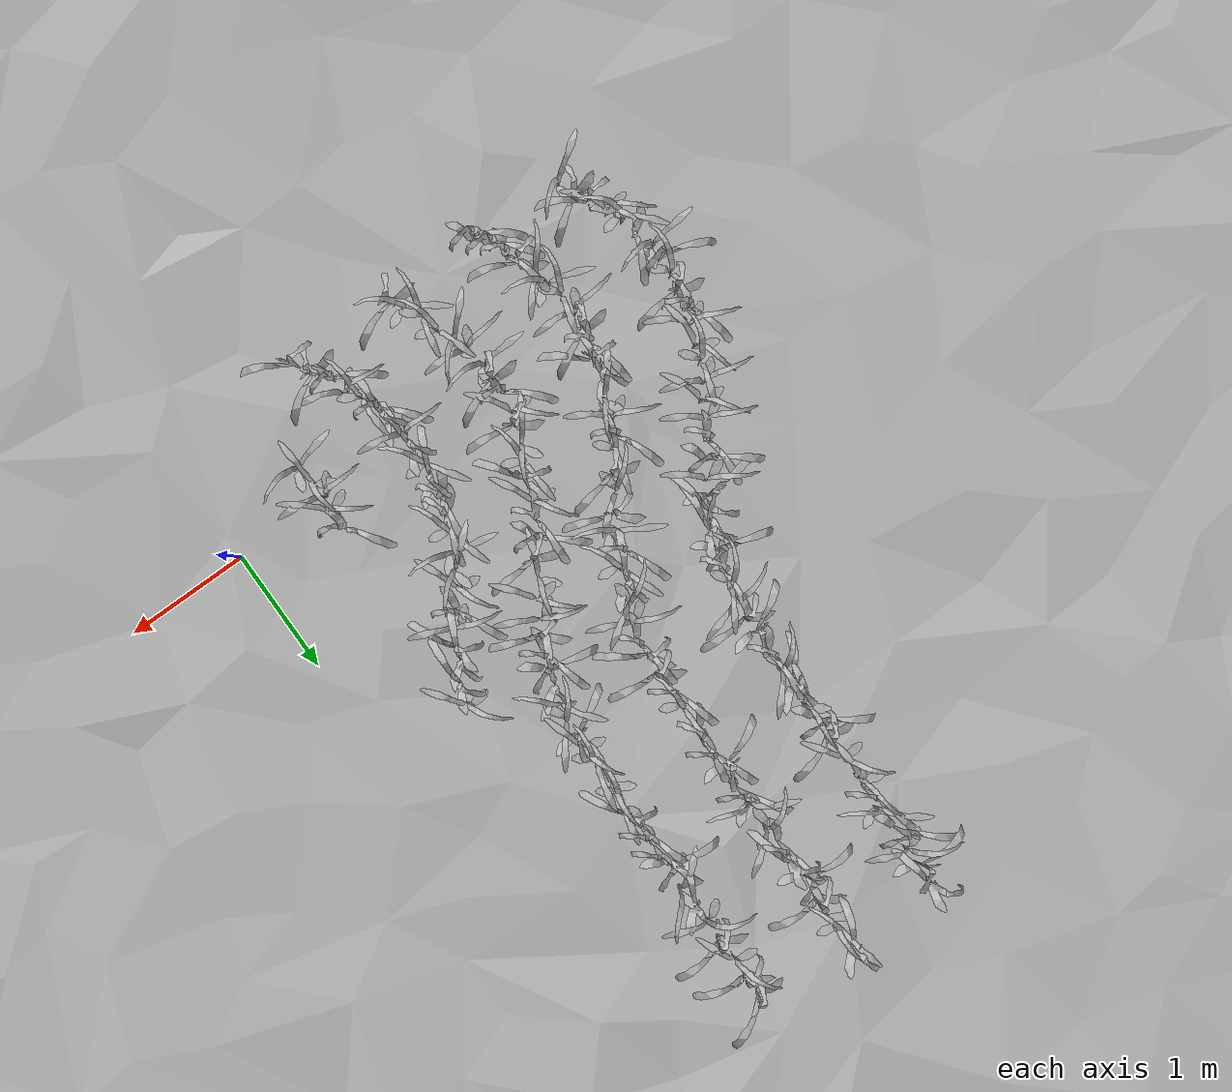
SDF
<sdf version="1.6">
 <world name="default">
  <model name="custom_terrain">
   <static>1</static>
   <link name="link">
    <collision name="collision">
     <geometry><mesh><uri>model://custom_terrain/meshes/terrain.stl</uri></mesh></geometry>
    </collision>
    <visual name="visual">
     <geometry><mesh><uri>model://custom_terrain/meshes/terrain.stl</uri></mesh></geometry>
     <material>
      <script>
       <uri>model://custom_terrain/materials/scripts</uri>
       <uri>model://custom_terrain/materials/textures</uri>
       <name>custom_terrain/terrain</name>
      </script>
     </material>
    </visual>
   </link>
   <pose>-1.53507 2.74629 0.25 0 -0 0</pose>
  </model>
  <include>
   <uri>model://maize_02</uri>
   <pose>-3.5246826022600453 -0.8385261277293343 0.29996374720717184 0.0 0.0 5.922296670662413</pose>
   <name>maize_02_0029</name>
   <static>true</static>
  </include>
  <include>
   <uri>model://maize_01</uri>
   <pose>-3.5709355796475397 -0.7046268727632661 0.29996374720717184 0.0 0.0 1.444019920913299</pose>
   <name>maize_01_0030</name>
   <static>true</static>
  </include>
  <include>
   <uri>model://maize_01</uri>
   <pose>-3.6336448572200553 -0.5797594394287573 0.29996374720717184 0.0 0.0 0.32203183308587047</pose>
   <name>maize_01_0031</name>
   <static>true</static>
  </include>
  <include>
   <uri>model://maize_02</uri>
   <pose>-3.6983056275719206 -0.47543790865323454 0.29996374720717184 0.0 0.0 1.3373291784525114</pose>
   <name>maize_02_0032</name>
   <static>true</static>
  </include>
  <include>
   <uri>model://maize_02</uri>
   <pose>-3.7590402920883563 -0.36178569490712476 0.29996374720717184 0.0 0.0 4.432373684699861</pose>
   <name>maize_02_0033</name>
   <static>true</static>
  </include>
  <include>
   <uri>model://maize_01</uri>
   <pose>-3.7701742743428763 -0.23403609171343806 0.29996374720717184 0.0 0.0 1.928436748098162</pose>
   <name>maize_01_0034</name>
   <static>true</static>
  </include>
  <include>
   <uri>model://maize_02</uri>
   <pose>-3.8197929000685216 -0.0709651151405992 0.29996374720717184 0.0 0.0 5.416564040372484</pose>
   <name>maize_02_0035</name>
   <static>true</static>
  </include>
  <include>
   <uri>model://maize_01</uri>
   <pose>-3.806684685591808 0.029505206422192808 0.29996374720717184 0.0 0.0 3.5475983094386017</pose>
   <name>maize_01_0036</name>
   <static>true</static>
  </include>
  <include>
   <uri>model://maize_02</uri>
   <pose>-3.814997386128057 0.17218964874158374 0.29996374720717184 0.0 0.0 3.5945645470747056</pose>
   <name>maize_02_0037</name>
   <static>true</static>
  </include>
  <include>
   <uri>model://maize_01</uri>
   <pose>-3.7805645519390065 0.29776706583548784 0.29996374720717184 0.0 0.0 0.9751677136648172</pose>
   <name>maize_01_0038</name>
   <static>true</static>
  </include>
  <include>
   <uri>model://maize_01</uri>
   <pose>-3.75154350893001 0.4324213704299986 0.29996374720717184 0.0 0.0 2.637481799988699</pose>
   <name>maize_01_0039</name>
   <static>true</static>
  </include>
  <include>
   <uri>model://maize_02</uri>
   <pose>-3.7138634384057463 0.5444586199330479 0.29996374720717184 0.0 0.0 1.6638097893023662</pose>
   <name>maize_02_0040</name>
   <static>true</static>
  </include>
  <include>
   <uri>model://maize_02</uri>
   <pose>-3.6593590176361768 0.6955483673002896 0.29848455599888285 0.0 0.0 0.7532479405778126</pose>
   <name>maize_02_0041</name>
   <static>true</static>
  </include>
  <include>
   <uri>model://maize_02</uri>
   <pose>-3.6186664088523064 0.8206976326008066 0.29848455599888285 0.0 0.0 3.3877188875004</pose>
   <name>maize_02_0042</name>
   <static>true</static>
  </include>
  <include>
   <uri>model://maize_02</uri>
   <pose>-3.5588682635673226 0.9486220873171336 0.29848455599888285 0.0 0.0 1.8789709059621456</pose>
   <name>maize_02_0043</name>
   <static>true</static>
  </include>
  <include>
   <uri>model://maize_02</uri>
   <pose>-3.465593222750364 1.0479885955222044 0.29848455599888285 0.0 0.0 1.0933131055118652</pose>
   <name>maize_02_0044</name>
   <static>true</static>
  </include>
  <include>
   <uri>model://maize_02</uri>
   <pose>-3.411683429007456 1.1820069874353456 0.2982043722469985 0.0 0.0 1.6527585744892856</pose>
   <name>maize_02_0045</name>
   <static>true</static>
  </include>
  <include>
   <uri>model://maize_01</uri>
   <pose>-3.33287329180877 1.2994993584818009 0.2982043722469985 0.0 0.0 2.34209236018415</pose>
   <name>maize_01_0046</name>
   <static>true</static>
  </include>
  <include>
   <uri>model://maize_01</uri>
   <pose>-3.2457187403974967 1.4195931527424916 0.2982043722469985 0.0 0.0 3.29132313555353</pose>
   <name>maize_01_0047</name>
   <static>true</static>
  </include>
  <include>
   <uri>model://maize_02</uri>
   <pose>-3.166275716454551 1.5400794868964083 0.2982043722469985 0.0 0.0 1.5516897548225197</pose>
   <name>maize_02_0048</name>
   <static>true</static>
  </include>
  <include>
   <uri>model://maize_01</uri>
   <pose>-3.110683276291151 1.652461897299695 0.2982043722469985 0.0 0.0 4.07934664485429</pose>
   <name>maize_01_0049</name>
   <static>true</static>
  </include>
  <include>
   <uri>model://maize_01</uri>
   <pose>-3.0469831952849917 1.7756025071229369 0.2982043722469985 0.0 0.0 5.72240479932771</pose>
   <name>maize_01_0050</name>
   <static>true</static>
  </include>
  <include>
   <uri>model://maize_01</uri>
   <pose>-2.958707936638692 1.8830968784769884 0.2982043722469985 0.0 0.0 5.450141772464677</pose>
   <name>maize_01_0051</name>
   <static>true</static>
  </include>
  <include>
   <uri>model://maize_01</uri>
   <pose>-2.9341411990979305 2.008239952124765 0.2982043722469985 0.0 0.0 3.6667950107291687</pose>
   <name>maize_01_0052</name>
   <static>true</static>
  </include>
  <include>
   <uri>model://maize_01</uri>
   <pose>-2.882753894519122 2.1337361580634746 0.2982043722469985 0.0 0.0 2.240636867107684</pose>
   <name>maize_01_0053</name>
   <static>true</static>
  </include>
  <include>
   <uri>model://maize_02</uri>
   <pose>-2.8612924687123584 2.2731264341948347 0.2982043722469985 0.0 0.0 3.180619982938752</pose>
   <name>maize_02_0054</name>
   <static>true</static>
  </include>
  <include>
   <uri>model://maize_02</uri>
   <pose>-2.815142622731468 2.393848887765921 0.2982043722469985 0.0 0.0 2.4463569772142515</pose>
   <name>maize_02_0055</name>
   <static>true</static>
  </include>
  <include>
   <uri>model://maize_01</uri>
   <pose>-2.8234001030866533 2.527526291867423 0.2982043722469985 0.0 0.0 0.7985601553587602</pose>
   <name>maize_01_0056</name>
   <static>true</static>
  </include>
  <include>
   <uri>model://maize_01</uri>
   <pose>-2.8010024675499414 2.663909061125891 0.2982043722469985 0.0 0.0 4.533112907941982</pose>
   <name>maize_01_0057</name>
   <static>true</static>
  </include>
  <include>
   <uri>model://maize_01</uri>
   <pose>-2.8108692582706336 2.830536949664181 0.2982043722469985 0.0 0.0 2.343838983946525</pose>
   <name>maize_01_0058</name>
   <static>true</static>
  </include>
  <include>
   <uri>model://maize_02</uri>
   <pose>-2.812596920223234 2.98387975948749 0.2982043722469985 0.0 0.0 3.000006266848885</pose>
   <name>maize_02_0059</name>
   <static>true</static>
  </include>
  <include>
   <uri>model://maize_01</uri>
   <pose>-2.8086761119353008 3.1444475171472015 0.2982043722469985 0.0 0.0 5.021257378977484</pose>
   <name>maize_01_0060</name>
   <static>true</static>
  </include>
  <include>
   <uri>model://maize_02</uri>
   <pose>-2.8142713396046006 3.2982899075374843 0.2982043722469985 0.0 0.0 0.4224962342315828</pose>
   <name>maize_02_0061</name>
   <static>true</static>
  </include>
  <include>
   <uri>model://maize_01</uri>
   <pose>-2.808226895425301 3.4257579260319972 0.2982043722469985 0.0 0.0 3.375960717166941</pose>
   <name>maize_01_0062</name>
   <static>true</static>
  </include>
  <include>
   <uri>model://maize_01</uri>
   <pose>-2.816519908271905 3.5666328728694734 0.2982043722469985 0.0 0.0 1.0820851123227977</pose>
   <name>maize_01_0063</name>
   <static>true</static>
  </include>
  <include>
   <uri>model://maize_02</uri>
   <pose>-2.8017931775835483 3.754826489649544 0.2982043722469985 0.0 0.0 1.2191590458596095</pose>
   <name>maize_02_0064</name>
   <static>true</static>
  </include>
  <include>
   <uri>model://maize_02</uri>
   <pose>-2.8228457170812282 3.9504630266050964 0.2982043722469985 0.0 0.0 0.6864576247364175</pose>
   <name>maize_02_0065</name>
   <static>true</static>
  </include>
  <include>
   <uri>model://maize_01</uri>
   <pose>-2.813271631886931 4.0646402717936265 0.2982043722469985 0.0 0.0 2.6256518236481976</pose>
   <name>maize_01_0066</name>
   <static>true</static>
  </include>
  <include>
   <uri>model://maize_02</uri>
   <pose>-2.803572472237573 4.2234928043657085 0.2982043722469985 0.0 0.0 4.637083931156359</pose>
   <name>maize_02_0067</name>
   <static>true</static>
  </include>
  <include>
   <uri>model://maize_01</uri>
   <pose>-2.826844295379367 4.416965677002313 0.2982043722469985 0.0 0.0 3.239104611329377</pose>
   <name>maize_01_0068</name>
   <static>true</static>
  </include>
  <include>
   <uri>model://maize_02</uri>
   <pose>-2.8107380339709827 4.579905128530415 0.2982043722469985 0.0 0.0 1.7434663834114121</pose>
   <name>maize_02_0069</name>
   <static>true</static>
  </include>
  <include>
   <uri>model://maize_01</uri>
   <pose>-2.8086048481575077 4.725899969128392 0.2982043722469985 0.0 0.0 4.093139093344104</pose>
   <name>maize_01_0070</name>
   <static>true</static>
  </include>
  <include>
   <uri>model://maize_01</uri>
   <pose>-2.8088437665662473 4.907545699673854 0.2982043722469985 0.0 0.0 5.728342934287055</pose>
   <name>maize_01_0071</name>
   <static>true</static>
  </include>
  <include>
   <uri>model://maize_01</uri>
   <pose>-2.773728321742444 -0.8762836748789267 0.300505825426684 0.0 0.0 3.269543029325392</pose>
   <name>maize_01_0101</name>
   <static>true</static>
  </include>
  <include>
   <uri>model://maize_01</uri>
   <pose>-2.847788245085764 -0.7546529631284506 0.300505825426684 0.0 0.0 3.0701469808381074</pose>
   <name>maize_01_0102</name>
   <static>true</static>
  </include>
  <include>
   <uri>model://maize_01</uri>
   <pose>-2.904778033747554 -0.6277956100735087 0.300505825426684 0.0 0.0 2.594812522642346</pose>
   <name>maize_01_0103</name>
   <static>true</static>
  </include>
  <include>
   <uri>model://maize_01</uri>
   <pose>-2.9676050878941513 -0.5191920914986274 0.300505825426684 0.0 0.0 0.5379837514329018</pose>
   <name>maize_01_0104</name>
   <static>true</static>
  </include>
  <include>
   <uri>model://maize_02</uri>
   <pose>-2.9955162819864367 -0.38191205657055227 0.300505825426684 0.0 0.0 3.0625700837478673</pose>
   <name>maize_02_0105</name>
   <static>true</static>
  </include>
  <include>
   <uri>model://maize_02</uri>
   <pose>-3.0320076345429503 -0.2770077266592439 0.300505825426684 0.0 0.0 4.965961374182776</pose>
   <name>maize_02_0106</name>
   <static>true</static>
  </include>
  <include>
   <uri>model://maize_02</uri>
   <pose>-3.067194131138379 -0.15428538780746123 0.300505825426684 0.0 0.0 3.4804155298784614</pose>
   <name>maize_02_0107</name>
   <static>true</static>
  </include>
  <include>
   <uri>model://maize_02</uri>
   <pose>-3.071662777670995 -0.0016926489327839592 0.300505825426684 0.0 0.0 2.1953502086446695</pose>
   <name>maize_02_0108</name>
   <static>true</static>
  </include>
  <include>
   <uri>model://maize_01</uri>
   <pose>-3.0631499423372737 0.13571776241661773 0.300505825426684 0.0 0.0 1.29414560182953</pose>
   <name>maize_01_0109</name>
   <static>true</static>
  </include>
  <include>
   <uri>model://maize_01</uri>
   <pose>-3.029583303520338 0.24253886618505519 0.300505825426684 0.0 0.0 2.536471110758194</pose>
   <name>maize_01_0110</name>
   <static>true</static>
  </include>
  <include>
   <uri>model://maize_01</uri>
   <pose>-2.9934746946191417 0.3774482421769554 0.300505825426684 0.0 0.0 0.15185196749731117</pose>
   <name>maize_01_0111</name>
   <static>true</static>
  </include>
  <include>
   <uri>model://maize_01</uri>
   <pose>-2.9674895751792856 0.5152084396135079 0.300505825426684 0.0 0.0 5.389643841637908</pose>
   <name>maize_01_0112</name>
   <static>true</static>
  </include>
  <include>
   <uri>model://maize_02</uri>
   <pose>-2.897340159284541 0.6345609350804786 0.300505825426684 0.0 0.0 6.263939836811219</pose>
   <name>maize_02_0113</name>
   <static>true</static>
  </include>
  <include>
   <uri>model://maize_02</uri>
   <pose>-2.8552905087938885 0.773244703117488 0.300505825426684 0.0 0.0 1.646851048940415</pose>
   <name>maize_02_0114</name>
   <static>true</static>
  </include>
  <include>
   <uri>model://maize_01</uri>
   <pose>-2.8007281405479216 0.8915679482909875 0.300505825426684 0.0 0.0 2.727980733055704</pose>
   <name>maize_01_0115</name>
   <static>true</static>
  </include>
  <include>
   <uri>model://maize_02</uri>
   <pose>-2.7363834927109982 1.0000211039638567 0.300505825426684 0.0 0.0 3.4301790056863046</pose>
   <name>maize_02_0116</name>
   <static>true</static>
  </include>
  <include>
   <uri>model://maize_01</uri>
   <pose>-2.6340597301414808 1.118295850125823 0.300505825426684 0.0 0.0 1.0052894689784557</pose>
   <name>maize_01_0117</name>
   <static>true</static>
  </include>
  <include>
   <uri>model://maize_02</uri>
   <pose>-2.568398545969396 1.2332837002279524 0.300505825426684 0.0 0.0 2.873647767402229</pose>
   <name>maize_02_0118</name>
   <static>true</static>
  </include>
  <include>
   <uri>model://maize_01</uri>
   <pose>-2.484786740471702 1.3758086545543426 0.300505825426684 0.0 0.0 0.46832249987270613</pose>
   <name>maize_01_0119</name>
   <static>true</static>
  </include>
  <include>
   <uri>model://maize_02</uri>
   <pose>-2.4144060460267416 1.4766404306523626 0.300505825426684 0.0 0.0 4.814605875961055</pose>
   <name>maize_02_0120</name>
   <static>true</static>
  </include>
  <include>
   <uri>model://maize_01</uri>
   <pose>-2.3647276746581807 1.5952748552985974 0.300505825426684 0.0 0.0 2.740760657847672</pose>
   <name>maize_01_0121</name>
   <static>true</static>
  </include>
  <include>
   <uri>model://maize_02</uri>
   <pose>-2.276895920161837 1.719855374504512 0.300505825426684 0.0 0.0 4.132216136375487</pose>
   <name>maize_02_0122</name>
   <static>true</static>
  </include>
  <include>
   <uri>model://maize_01</uri>
   <pose>-2.2433147305768695 1.843888308335566 0.300505825426684 0.0 0.0 5.058546130496538</pose>
   <name>maize_01_0123</name>
   <static>true</static>
  </include>
  <include>
   <uri>model://maize_02</uri>
   <pose>-2.174464077212094 1.958991145310596 0.300505825426684 0.0 0.0 2.743386996837504</pose>
   <name>maize_02_0124</name>
   <static>true</static>
  </include>
  <include>
   <uri>model://maize_02</uri>
   <pose>-2.1273825941296973 2.0755283462458185 0.300505825426684 0.0 0.0 1.7932437179524456</pose>
   <name>maize_02_0125</name>
   <static>true</static>
  </include>
  <include>
   <uri>model://maize_01</uri>
   <pose>-2.0796680367477065 2.207027939025395 0.300505825426684 0.0 0.0 2.453119374134885</pose>
   <name>maize_01_0126</name>
   <static>true</static>
  </include>
  <include>
   <uri>model://maize_01</uri>
   <pose>-2.0888724132260577 2.3482819995690565 0.300505825426684 0.0 0.0 0.19607125075351584</pose>
   <name>maize_01_0127</name>
   <static>true</static>
  </include>
  <include>
   <uri>model://maize_01</uri>
   <pose>-2.0681259275712587 2.490049106400693 0.300505825426684 0.0 0.0 0.6608104494407534</pose>
   <name>maize_01_0128</name>
   <static>true</static>
  </include>
  <include>
   <uri>model://maize_01</uri>
   <pose>-2.0720729632011996 2.6387529290157254 0.300505825426684 0.0 0.0 2.666755859976712</pose>
   <name>maize_01_0129</name>
   <static>true</static>
  </include>
  <include>
   <uri>model://maize_02</uri>
   <pose>-2.063423611139003 2.8068321301294126 0.300505825426684 0.0 0.0 3.7884513864261655</pose>
   <name>maize_02_0130</name>
   <static>true</static>
  </include>
  <include>
   <uri>model://maize_01</uri>
   <pose>-2.0653216182204592 3.0027908030119144 0.300505825426684 0.0 0.0 2.232423541817503</pose>
   <name>maize_01_0131</name>
   <static>true</static>
  </include>
  <include>
   <uri>model://maize_01</uri>
   <pose>-2.043150254214635 3.1576973456117146 0.300505825426684 0.0 0.0 2.720043961667873</pose>
   <name>maize_01_0132</name>
   <static>true</static>
  </include>
  <include>
   <uri>model://maize_01</uri>
   <pose>-2.07908513101525 3.3230099310436967 0.29948212133912644 0.0 0.0 4.409894351131748</pose>
   <name>maize_01_0133</name>
   <static>true</static>
  </include>
  <include>
   <uri>model://maize_01</uri>
   <pose>-2.050698500959015 3.514422943294449 0.29948212133912644 0.0 0.0 2.953256278456605</pose>
   <name>maize_01_0134</name>
   <static>true</static>
  </include>
  <include>
   <uri>model://maize_02</uri>
   <pose>-2.0512296858966415 3.6505984547191237 0.29948212133912644 0.0 0.0 4.881407689846183</pose>
   <name>maize_02_0135</name>
   <static>true</static>
  </include>
  <include>
   <uri>model://maize_02</uri>
   <pose>-2.0581621270970714 3.8648975837102193 0.2995843190798846 0.0 0.0 2.76897084215963</pose>
   <name>maize_02_0136</name>
   <static>true</static>
  </include>
  <include>
   <uri>model://maize_01</uri>
   <pose>-2.071797977185978 4.011679782256438 0.2995843190798846 0.0 0.0 2.581832657028505</pose>
   <name>maize_01_0137</name>
   <static>true</static>
  </include>
  <include>
   <uri>model://maize_01</uri>
   <pose>-2.061604632896655 4.190698355254343 0.2995843190798846 0.0 0.0 5.794762692837692</pose>
   <name>maize_01_0138</name>
   <static>true</static>
  </include>
  <include>
   <uri>model://maize_01</uri>
   <pose>-2.0743169377846415 4.315830425969288 0.2995843190798846 0.0 0.0 3.953977338304685</pose>
   <name>maize_01_0139</name>
   <static>true</static>
  </include>
  <include>
   <uri>model://maize_01</uri>
   <pose>-2.068328190269651 4.489713975633965 0.2995843190798846 0.0 0.0 0.6829312402032905</pose>
   <name>maize_01_0140</name>
   <static>true</static>
  </include>
  <include>
   <uri>model://maize_02</uri>
   <pose>-2.0532391883938956 4.626148058171054 0.2995843190798846 0.0 0.0 0.5376617927121125</pose>
   <name>maize_02_0141</name>
   <static>true</static>
  </include>
  <include>
   <uri>model://maize_02</uri>
   <pose>-2.076405547719786 4.768070377561786 0.2995843190798846 0.0 0.0 3.974890464088116</pose>
   <name>maize_02_0142</name>
   <static>true</static>
  </include>
  <include>
   <uri>model://maize_01</uri>
   <pose>-2.068803812529074 4.957547343021288 0.2995843190798846 0.0 0.0 5.159817521612146</pose>
   <name>maize_01_0143</name>
   <static>true</static>
  </include>
  <include>
   <uri>model://maize_01</uri>
   <pose>-2.0345850742373504 -0.8331138934803197 0.3011995378273948 0.0 0.0 1.231542235374328</pose>
   <name>maize_01_0173</name>
   <static>true</static>
  </include>
  <include>
   <uri>model://maize_02</uri>
   <pose>-2.0921316490407706 -0.7253437910571658 0.3011995378273948 0.0 0.0 4.674769182995641</pose>
   <name>maize_02_0174</name>
   <static>true</static>
  </include>
  <include>
   <uri>model://maize_02</uri>
   <pose>-2.1534638653071183 -0.6047311898719723 0.3011995378273948 0.0 0.0 3.548609825304612</pose>
   <name>maize_02_0175</name>
   <static>true</static>
  </include>
  <include>
   <uri>model://maize_02</uri>
   <pose>-2.189001440753812 -0.4575244177267066 0.3011995378273948 0.0 0.0 4.0527753134339966</pose>
   <name>maize_02_0176</name>
   <static>true</static>
  </include>
  <include>
   <uri>model://maize_02</uri>
   <pose>-2.2462021023254306 -0.3330974693422728 0.3011995378273948 0.0 0.0 6.10786046784121</pose>
   <name>maize_02_0177</name>
   <static>true</static>
  </include>
  <include>
   <uri>model://maize_02</uri>
   <pose>-2.2753260639527375 -0.22967391756535058 0.3011995378273948 0.0 0.0 2.1994728526236282</pose>
   <name>maize_02_0178</name>
   <static>true</static>
  </include>
  <include>
   <uri>model://maize_02</uri>
   <pose>-2.3181071224646943 -0.066014635583415 0.3011995378273948 0.0 0.0 5.340951493543089</pose>
   <name>maize_02_0179</name>
   <static>true</static>
  </include>
  <include>
   <uri>model://maize_01</uri>
   <pose>-2.3192877968285512 0.05013810938732568 0.3011995378273948 0.0 0.0 1.2291290102117494</pose>
   <name>maize_01_0180</name>
   <static>true</static>
  </include>
  <include>
   <uri>model://maize_01</uri>
   <pose>-2.3113091853576537 0.16525977314526966 0.3011995378273948 0.0 0.0 3.122018030358863</pose>
   <name>maize_01_0181</name>
   <static>true</static>
  </include>
  <include>
   <uri>model://maize_02</uri>
   <pose>-2.2935873338157826 0.3207388325138052 0.2989015414042212 0.0 0.0 1.2918308484348826</pose>
   <name>maize_02_0182</name>
   <static>true</static>
  </include>
  <include>
   <uri>model://maize_01</uri>
   <pose>-2.260889165147439 0.4226798962201477 0.2989015414042212 0.0 0.0 0.7070471617380067</pose>
   <name>maize_01_0183</name>
   <static>true</static>
  </include>
  <include>
   <uri>model://maize_02</uri>
   <pose>-2.2144179942587985 0.561719384466856 0.2989015414042212 0.0 0.0 0.041559683566424165</pose>
   <name>maize_02_0184</name>
   <static>true</static>
  </include>
  <include>
   <uri>model://maize_02</uri>
   <pose>-2.1489883930611318 0.6938572299630714 0.2989015414042212 0.0 0.0 3.8080199315961396</pose>
   <name>maize_02_0185</name>
   <static>true</static>
  </include>
  <include>
   <uri>model://maize_01</uri>
   <pose>-2.0970058236770184 0.8033105030720773 0.2989015414042212 0.0 0.0 6.152383216095607</pose>
   <name>maize_01_0186</name>
   <static>true</static>
  </include>
  <include>
   <uri>model://maize_02</uri>
   <pose>-2.0417429015046547 0.9501652688290003 0.2979473891782632 0.0 0.0 1.1145923660857613</pose>
   <name>maize_02_0187</name>
   <static>true</static>
  </include>
  <include>
   <uri>model://maize_01</uri>
   <pose>-1.9875076541819074 1.049169617692254 0.2979473891782632 0.0 0.0 2.353385384307319</pose>
   <name>maize_01_0188</name>
   <static>true</static>
  </include>
  <include>
   <uri>model://maize_01</uri>
   <pose>-1.89934903571569 1.1696773101249562 0.2979473891782632 0.0 0.0 3.2181343832629037</pose>
   <name>maize_01_0189</name>
   <static>true</static>
  </include>
  <include>
   <uri>model://maize_01</uri>
   <pose>-1.8226102556755464 1.295989423740567 0.2979473891782632 0.0 0.0 0.8756524589608817</pose>
   <name>maize_01_0190</name>
   <static>true</static>
  </include>
  <include>
   <uri>model://maize_02</uri>
   <pose>-1.7610097015330022 1.4170629023125623 0.2979473891782632 0.0 0.0 0.25876273283777146</pose>
   <name>maize_02_0191</name>
   <static>true</static>
  </include>
  <include>
   <uri>model://maize_02</uri>
   <pose>-1.6547387385173564 1.5361435202462064 0.2979473891782632 0.0 0.0 1.2981229251859254</pose>
   <name>maize_02_0192</name>
   <static>true</static>
  </include>
  <include>
   <uri>model://maize_02</uri>
   <pose>-1.5934195912655496 1.6733864131367133 0.2979473891782632 0.0 0.0 1.7501416908156622</pose>
   <name>maize_02_0193</name>
   <static>true</static>
  </include>
  <include>
   <uri>model://maize_01</uri>
   <pose>-1.549069244881138 1.783239183023934 0.2979473891782632 0.0 0.0 0.43555354731424684</pose>
   <name>maize_01_0194</name>
   <static>true</static>
  </include>
  <include>
   <uri>model://maize_01</uri>
   <pose>-1.472645711343992 1.8897881547996038 0.2979473891782632 0.0 0.0 2.640135602293485</pose>
   <name>maize_01_0195</name>
   <static>true</static>
  </include>
  <include>
   <uri>model://maize_01</uri>
   <pose>-1.4090906390763707 1.9999621404054342 0.2979473891782632 0.0 0.0 3.734304471761258</pose>
   <name>maize_01_0196</name>
   <static>true</static>
  </include>
  <include>
   <uri>model://maize_01</uri>
   <pose>-1.3858619587683176 2.1485325688689314 0.2979473891782632 0.0 0.0 5.0625849707522645</pose>
   <name>maize_01_0197</name>
   <static>true</static>
  </include>
  <include>
   <uri>model://maize_02</uri>
   <pose>-1.3485003711981787 2.2689680129041805 0.2979473891782632 0.0 0.0 4.429746590408732</pose>
   <name>maize_02_0198</name>
   <static>true</static>
  </include>
  <include>
   <uri>model://maize_02</uri>
   <pose>-1.31538899618334 2.391523084442985 0.2979473891782632 0.0 0.0 3.125027842993115</pose>
   <name>maize_02_0199</name>
   <static>true</static>
  </include>
  <include>
   <uri>model://maize_01</uri>
   <pose>-1.3194234854615627 2.529755437868309 0.2979473891782632 0.0 0.0 4.4920402950723535</pose>
   <name>maize_01_0200</name>
   <static>true</static>
  </include>
  <include>
   <uri>model://maize_02</uri>
   <pose>-1.3089882190107158 2.60416362560477 0.2979473891782632 0.0 0.0 0.916538366789457</pose>
   <name>maize_02_0201</name>
   <static>true</static>
  </include>
  <include>
   <uri>model://maize_02</uri>
   <pose>-1.3169172823986683 2.7603717984393508 0.2979473891782632 0.0 0.0 3.5567653003137982</pose>
   <name>maize_02_0202</name>
   <static>true</static>
  </include>
  <include>
   <uri>model://maize_02</uri>
   <pose>-1.329718527255208 2.9497290831490433 0.2979473891782632 0.0 0.0 0.4947037225328986</pose>
   <name>maize_02_0203</name>
   <static>true</static>
  </include>
  <include>
   <uri>model://maize_02</uri>
   <pose>-1.3190579529196234 3.0578355861155093 0.2979473891782632 0.0 0.0 3.534846232402213</pose>
   <name>maize_02_0204</name>
   <static>true</static>
  </include>
  <include>
   <uri>model://maize_01</uri>
   <pose>-1.315744953538742 3.2218076542509384 0.2979473891782632 0.0 0.0 6.032163823221855</pose>
   <name>maize_01_0205</name>
   <static>true</static>
  </include>
  <include>
   <uri>model://maize_01</uri>
   <pose>-1.3173285536868546 3.356518140333192 0.2979473891782632 0.0 0.0 2.7110240277416513</pose>
   <name>maize_01_0206</name>
   <static>true</static>
  </include>
  <include>
   <uri>model://maize_01</uri>
   <pose>-1.3115263291168946 3.5164092492634453 0.2979473891782632 0.0 0.0 2.684955900931188</pose>
   <name>maize_01_0207</name>
   <static>true</static>
  </include>
  <include>
   <uri>model://maize_01</uri>
   <pose>-1.3187402711034648 3.6655246651435935 0.2979473891782632 0.0 0.0 3.8114247667807084</pose>
   <name>maize_01_0208</name>
   <static>true</static>
  </include>
  <include>
   <uri>model://maize_02</uri>
   <pose>-1.293819066588432 3.870052382430073 0.29914389764205573 0.0 0.0 6.026067561384906</pose>
   <name>maize_02_0209</name>
   <static>true</static>
  </include>
  <include>
   <uri>model://maize_01</uri>
   <pose>-1.3082355008707116 4.039570319340152 0.29914389764205573 0.0 0.0 5.138078589021744</pose>
   <name>maize_01_0210</name>
   <static>true</static>
  </include>
  <include>
   <uri>model://maize_02</uri>
   <pose>-1.3197517903248859 4.168161145718708 0.29914389764205573 0.0 0.0 1.7938329474748866</pose>
   <name>maize_02_0211</name>
   <static>true</static>
  </include>
  <include>
   <uri>model://maize_01</uri>
   <pose>-1.311963945000988 4.33755287879773 0.29914389764205573 0.0 0.0 0.8498925431313673</pose>
   <name>maize_01_0212</name>
   <static>true</static>
  </include>
  <include>
   <uri>model://maize_02</uri>
   <pose>-1.323144559331895 4.502768198330781 0.29914389764205573 0.0 0.0 1.009331208576651</pose>
   <name>maize_02_0213</name>
   <static>true</static>
  </include>
  <include>
   <uri>model://maize_01</uri>
   <pose>-1.326391152752837 4.648217976199522 0.29914389764205573 0.0 0.0 0.5124733895381801</pose>
   <name>maize_01_0214</name>
   <static>true</static>
  </include>
  <include>
   <uri>model://maize_01</uri>
   <pose>-1.3217913874806604 4.819768664732242 0.29914389764205573 0.0 0.0 1.2428310861258405</pose>
   <name>maize_01_0215</name>
   <static>true</static>
  </include>
  <include>
   <uri>model://maize_01</uri>
   <pose>-1.215956269602157 -0.8430318105744534 0.3010633590603995 0.0 0.0 0.3709461094626175</pose>
   <name>maize_01_0245</name>
   <static>true</static>
  </include>
  <include>
   <uri>model://maize_01</uri>
   <pose>-1.2818301971361123 -0.7386989121871508 0.3010633590603995 0.0 0.0 1.431091051762261</pose>
   <name>maize_01_0246</name>
   <static>true</static>
  </include>
  <include>
   <uri>model://maize_01</uri>
   <pose>-1.3563174015813335 -0.6207269830463316 0.3010633590603995 0.0 0.0 3.3512065544338587</pose>
   <name>maize_01_0247</name>
   <static>true</static>
  </include>
  <include>
   <uri>model://maize_02</uri>
   <pose>-1.38011977778198 -0.48863359838585185 0.3010633590603995 0.0 0.0 1.952188955947301</pose>
   <name>maize_02_0248</name>
   <static>true</static>
  </include>
  <include>
   <uri>model://maize_02</uri>
   <pose>-1.4497419642009322 -0.37582535860023536 0.3010633590603995 0.0 0.0 3.7915700734407216</pose>
   <name>maize_02_0249</name>
   <static>true</static>
  </include>
  <include>
   <uri>model://maize_01</uri>
   <pose>-1.5087585097205147 -0.25498208871480865 0.3010633590603995 0.0 0.0 3.0651206716588466</pose>
   <name>maize_01_0250</name>
   <static>true</static>
  </include>
  <include>
   <uri>model://maize_01</uri>
   <pose>-1.5128523184867373 -0.13519062249619804 0.3010633590603995 0.0 0.0 5.487955020328073</pose>
   <name>maize_01_0251</name>
   <static>true</static>
  </include>
  <include>
   <uri>model://maize_02</uri>
   <pose>-1.5559567152455467 0.005191630099661525 0.3010633590603995 0.0 0.0 2.0589468699669893</pose>
   <name>maize_02_0252</name>
   <static>true</static>
  </include>
  <include>
   <uri>model://maize_01</uri>
   <pose>-1.5464954119397352 0.14149168505332213 0.3010633590603995 0.0 0.0 5.505208025221335</pose>
   <name>maize_01_0253</name>
   <static>true</static>
  </include>
  <include>
   <uri>model://maize_02</uri>
   <pose>-1.5631317334322852 0.28739727850454266 0.3010633590603995 0.0 0.0 4.339289997657111</pose>
   <name>maize_02_0254</name>
   <static>true</static>
  </include>
  <include>
   <uri>model://maize_01</uri>
   <pose>-1.5193737166489891 0.4156587909498104 0.3010633590603995 0.0 0.0 5.08316413200889</pose>
   <name>maize_01_0255</name>
   <static>true</static>
  </include>
  <include>
   <uri>model://maize_01</uri>
   <pose>-1.513406147471627 0.5314905893682209 0.3010633590603995 0.0 0.0 2.2317532818393766</pose>
   <name>maize_01_0256</name>
   <static>true</static>
  </include>
  <include>
   <uri>model://maize_01</uri>
   <pose>-1.4763861394109716 0.6493419809388439 0.3010633590603995 0.0 0.0 2.058618640899124</pose>
   <name>maize_01_0257</name>
   <static>true</static>
  </include>
  <include>
   <uri>model://maize_02</uri>
   <pose>-1.4249599883850046 0.7999522475736998 0.3010633590603995 0.0 0.0 4.0480487328824095</pose>
   <name>maize_02_0258</name>
   <static>true</static>
  </include>
  <include>
   <uri>model://maize_02</uri>
   <pose>-1.3515865968153158 0.9225447917480409 0.3010633590603995 0.0 0.0 5.121523644666726</pose>
   <name>maize_02_0259</name>
   <static>true</static>
  </include>
  <include>
   <uri>model://maize_02</uri>
   <pose>-1.2956331286644016 1.0265401942586945 0.3010633590603995 0.0 0.0 6.0296007617109675</pose>
   <name>maize_02_0260</name>
   <static>true</static>
  </include>
  <include>
   <uri>model://maize_02</uri>
   <pose>-1.2336798073225694 1.1373228698180367 0.3010633590603995 0.0 0.0 1.007447189275063</pose>
   <name>maize_02_0261</name>
   <static>true</static>
  </include>
  <include>
   <uri>model://maize_01</uri>
   <pose>-1.1331374493490565 1.2731679677335495 0.3010633590603995 0.0 0.0 2.79367849001778</pose>
   <name>maize_01_0262</name>
   <static>true</static>
  </include>
  <include>
   <uri>model://maize_02</uri>
   <pose>-1.0621525096656212 1.3761958316143101 0.3010633590603995 0.0 0.0 1.8176769258117227</pose>
   <name>maize_02_0263</name>
   <static>true</static>
  </include>
  <include>
   <uri>model://maize_01</uri>
   <pose>-0.9882131467220223 1.5234854921958123 0.3010633590603995 0.0 0.0 5.972140921460971</pose>
   <name>maize_01_0264</name>
   <static>true</static>
  </include>
  <include>
   <uri>model://maize_01</uri>
   <pose>-0.9347051809049487 1.6163858198724974 0.3010633590603995 0.0 0.0 5.088574510001017</pose>
   <name>maize_01_0265</name>
   <static>true</static>
  </include>
  <include>
   <uri>model://maize_01</uri>
   <pose>-0.8457692032015782 1.752871173380565 0.3010633590603995 0.0 0.0 5.473824976460489</pose>
   <name>maize_01_0266</name>
   <static>true</static>
  </include>
  <include>
   <uri>model://maize_02</uri>
   <pose>-0.8041358128173688 1.8790711943959686 0.3010633590603995 0.0 0.0 1.2291130611314234</pose>
   <name>maize_02_0267</name>
   <static>true</static>
  </include>
  <include>
   <uri>model://maize_02</uri>
   <pose>-0.7879375229914156 -0.22366480940256636 0.3008109943421454 0.0 0.0 5.530791632207131</pose>
   <name>maize_02_0323</name>
   <static>true</static>
  </include>
  <include>
   <uri>model://maize_02</uri>
   <pose>-0.8112952585067574 -0.08796054240786219 0.3008109943421454 0.0 0.0 0.6688563233530276</pose>
   <name>maize_02_0324</name>
   <static>true</static>
  </include>
  <include>
   <uri>model://maize_02</uri>
   <pose>-0.8249481585247189 0.04225786605461248 0.3008109943421454 0.0 0.0 2.1142229765557525</pose>
   <name>maize_02_0325</name>
   <static>true</static>
  </include>
  <include>
   <uri>model://maize_02</uri>
   <pose>-0.79555311958484 0.14353875275156927 0.3008109943421454 0.0 0.0 1.504613331516338</pose>
   <name>maize_02_0326</name>
   <static>true</static>
  </include>
  <include>
   <uri>model://maize_01</uri>
   <pose>-0.8066674860491279 0.3040463757790468 0.3008109943421454 0.0 0.0 2.96094205300091</pose>
   <name>maize_01_0327</name>
   <static>true</static>
  </include>
 </world>
</sdf>
